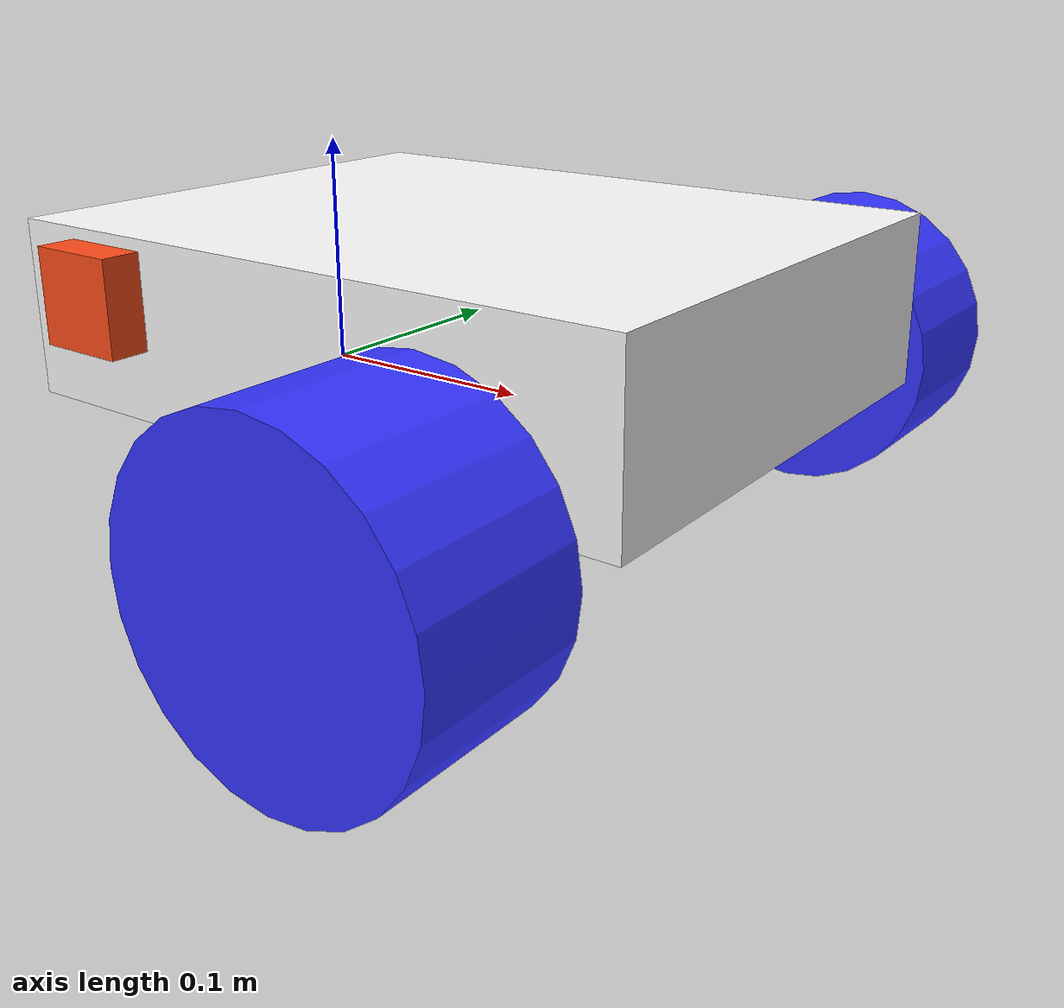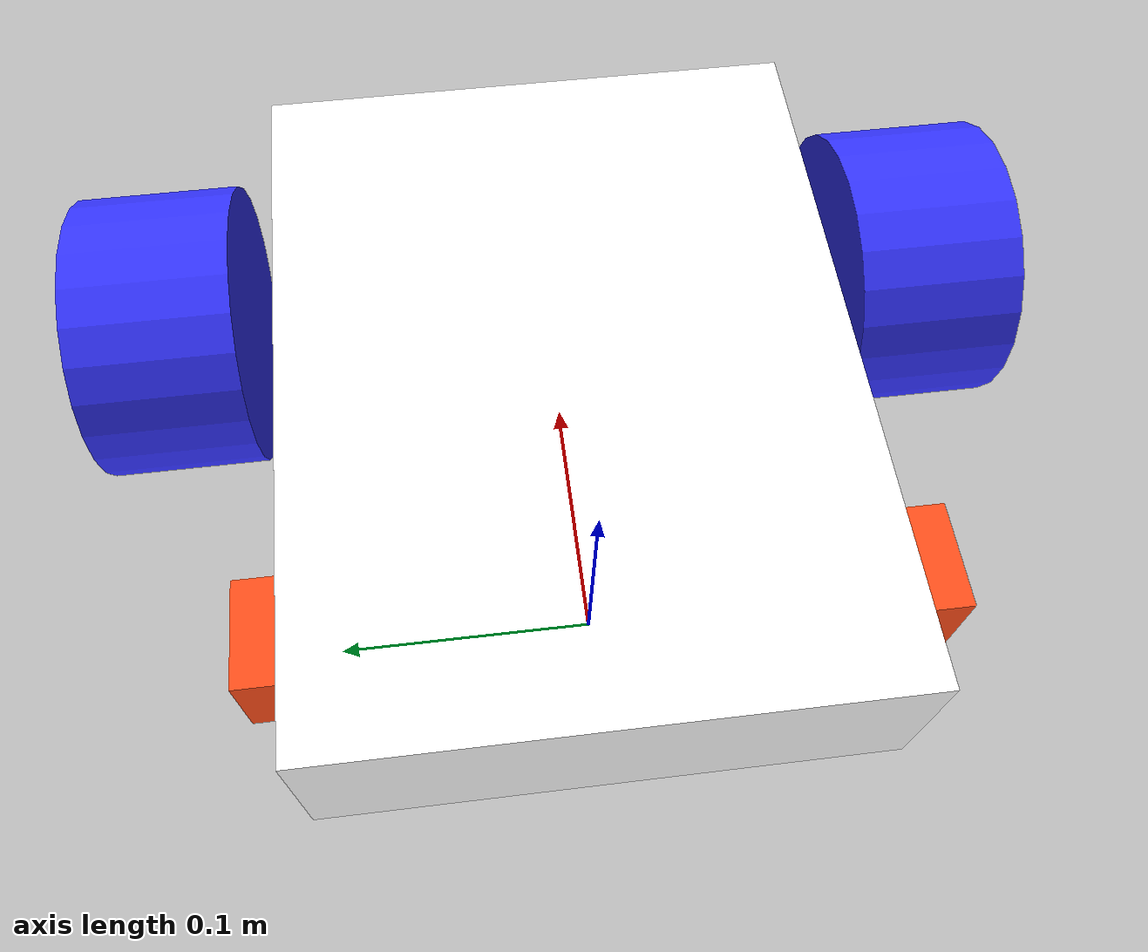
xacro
<?xml version="1.0"?>
<robot xmlns:xacro="http://www.ros.org/wiki/xacro" >

    <xacro:include filename="inertial_macros.xacro"/>

    <material name="white">
        <color rgba="1 1 1 1" />
    </material>

    <material name="orange">
        <color rgba="1 0.3 0.1 1"/>
    </material>

    <material name="blue">
        <color rgba="0.2 0.2 1 1"/>
    </material>

    <material name="black">
        <color rgba="0 0 0 1"/>
    </material>

    <!-- BASE LINK -->

    <link name="base_link">

    </link>

    <!-- BASE_FOOTPRINT LINK -->

    <joint name="base_footprint_joint" type="fixed">
        <parent link="base_link"/>
        <child link="base_footprint"/>
        <origin xyz="0 0 0" rpy="0 0 0"/>
    </joint>

    <link name="base_footprint">
    </link>

    <!-- CHASSIS LINK -->

    <joint name="chassis_joint" type="fixed">
        <parent link="base_link"/>
        <child link="chassis"/>
        <origin xyz="-0.064 0 0"/>
    </joint>

    <link name="chassis">
        <visual>
            <origin xyz="0.146065 0 0.0375"/>
            <geometry>
                <box size="0.29213 0.227 0.075"/>
            </geometry>
            <material name="white"/>
        </visual>
        <collision>
            <origin xyz="0.15 0 0.075"/>
            <geometry>
                <box size="0.29213 0.227 0.075"/>
            </geometry>
        </collision>
        <!-- Increased mass for stability -->
    <xacro:inertial_box mass="5.0" x="0.29213" y="0.227" z="0.075">
      <origin xyz="0.146065 0 0.0375" rpy="0 0 0"/>
    </xacro:inertial_box>
  </link>

    <gazebo reference="chassis">
        <material>Gazebo/White</material>
    </gazebo>

    <!-- LEFT WHEEL LINK -->

    <joint name="left_wheel_joint" type="continuous">
        <parent link="base_link"/>
        <child link="left_wheel"/>
        <origin xyz="0.16413 0.17 0" rpy="-${pi/2} 0 0" />
        <axis xyz="0 0 1"/>
    </joint>

    <link name="left_wheel">
        <visual>
            <geometry>
                <cylinder radius="0.064" length="0.071"/>
            </geometry>
            <material name="blue"/>
        </visual>
        <collision>
            <geometry>
                <sphere radius="0.064"/>
            </geometry>
        </collision>
        <!-- realistic small wheel mass -->
    <xacro:inertial_cylinder mass="0.4" length="0.04" radius="0.064">
      <origin xyz="0 0 0" rpy="0 0 0"/>
    </xacro:inertial_cylinder>
  </link>

    <gazebo reference="left_wheel">
        <material>Gazebo/Blue</material>
    </gazebo>

    <!-- RIGHT WHEEL LINK -->

    <joint name="right_wheel_joint" type="continuous">
        <parent link="base_link"/>
        <child link="right_wheel"/>
        <origin xyz="0.16413 -0.17 0" rpy="${pi/2} 0 0" />
        <axis xyz="0 0 -1"/>
    </joint>

    <link name="right_wheel">
        <visual>
            <geometry>
                <cylinder radius="0.064" length="0.071"/>
            </geometry>
            <material name="blue"/>
        </visual>
        <collision>
            <geometry>
                <sphere radius="0.064"/>
            </geometry>
        </collision>
        <xacro:inertial_cylinder mass="0.4" length="0.04" radius="0.064">
      <origin xyz="0 0 0" rpy="0 0 0"/>
    </xacro:inertial_cylinder>
  </link>

    <gazebo reference="right_wheel">
        <material>Gazebo/Blue</material>
    </gazebo>

    <!--  UWB MODULES (Left & Right) -->

    <!-- LEFT UWB MODULE -->
    <joint name="uwb_left_joint" type="fixed">
        <parent link="chassis"/>
        <!-- Position slightly behind left wheel -->
        <child link="uwb_left"/>
        <origin xyz="0.05 0.12 0.05" rpy="0 0 0"/>
    </joint>

    <link name="uwb_left">
        <visual>
            <geometry>
                <!-- Approximate UWB tag as a small box -->
                <box size="0.04 0.02 0.04"/>
            </geometry>
            <material name="orange"/>
        </visual>
        <collision>
            <geometry>
                <box size="0.04 0.04 0.02"/>
            </geometry>
        </collision>
        <xacro:inertial_box mass="0.05" x="0.04" y="0.04" z="0.02">
            <origin xyz="0 0 0" rpy="0 0 0"/>
        </xacro:inertial_box>
    </link>

    <gazebo reference="uwb_left">
        <material>Gazebo/Orange</material>
    </gazebo>

    <!-- RIGHT UWB MODULE -->
    <joint name="uwb_right_joint" type="fixed">
        <parent link="chassis"/>
        <!-- Position slightly behind right wheel -->
        <child link="uwb_right"/>
        <origin xyz="0.05 -0.12 0.05" rpy="0 0 0"/>
    </joint>

    <link name="uwb_right">
        <visual>
            <geometry>
                <box size="0.04 0.02 0.04"/>
            </geometry>
            <material name="orange"/>
        </visual>
        <collision>
            <geometry>
                <box size="0.04 0.04 0.02"/>
            </geometry>
        </collision>
        <xacro:inertial_box mass="0.05" x="0.04" y="0.04" z="0.02">
            <origin xyz="0 0 0" rpy="0 0 0"/>
        </xacro:inertial_box>
    </link>

    <gazebo reference="uwb_right">
        <material>Gazebo/Orange</material>
    </gazebo>

    <!-- CASTER WHEEL LINK -->

    <joint name="caster_wheel_joint" type="fixed">
        <parent link="chassis"/>
        <child link="caster_wheel"/>
        <origin xyz="0.09213 0 0"/>
    </joint>

    <link name="caster_wheel">
        <visual>
            <geometry>
                <sphere radius="0.06"/>
            </geometry>
            <material name="black"/>
        </visual>
        <collision>
            <geometry>
                <sphere radius="0.06"/>
            </geometry>
        </collision>
        <xacro:inertial_sphere mass="0.2" radius="0.06">
            <origin xyz="0 0 0" rpy="0 0 0"/>
        </xacro:inertial_sphere>
    </link>

    <gazebo reference="caster_wheel">
        <material>Gazebo/Black</material>
        <mu1 value="0.001"/>
        <mu2 value="0.001"/>
    </gazebo>

</robot>
